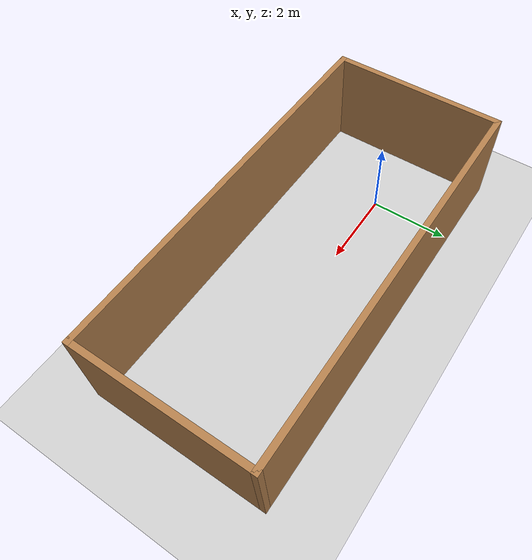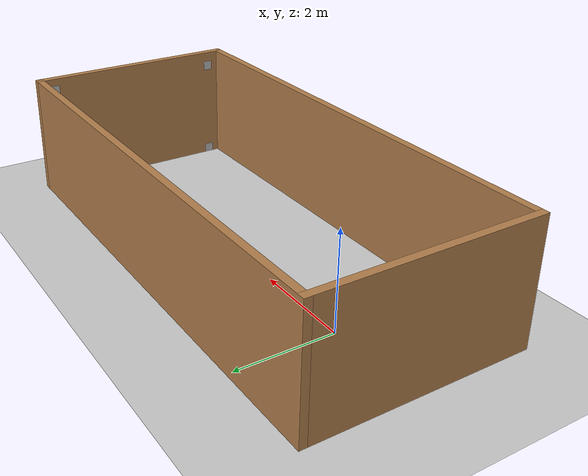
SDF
<sdf version="1.6">
 <world name="default">
  <light name="sun" type="directional">
   <pose>0 0 10 0 -0 0</pose>
   <diffuse>0.8 0.8 0.8 1</diffuse>
   <specular>0.1 0.1 0.1 1</specular>
   <attenuation>
    <range>1000</range>
    <constant>0.9</constant>
    <linear>0.01</linear>
    <quadratic>0.001</quadratic>
   </attenuation>
   <direction>-0.5 0.5 -1</direction>
  </light>
  <model name="ground_plane">
   <static>1</static>
   <link name="link">
    <collision name="collision">
     <geometry><plane><normal>0 0 1</normal><size>100 100</size></plane></geometry>
     <surface><friction><ode><mu>100</mu><mu2>50</mu2></ode></friction></surface>
    </collision>
    <visual name="visual">
     <cast_shadows>0</cast_shadows>
     <geometry><plane><normal>0 0 1</normal><size>100 100</size></plane></geometry>
     <material>
      <script><uri>file://media/materials/scripts/gazebo.material</uri><name>Gazebo/Grey</name></script>
     </material>
    </visual>
   </link>
  </model>
  <gravity>0 0 -9.8</gravity>
  <magnetic_field>6e-06 2.3e-05 -4.2e-05</magnetic_field>
  <atmosphere type="adiabatic"/>
  <physics name="default_physics" default="0" type="ode">
   <max_step_size>0.001</max_step_size>
   <real_time_factor>1</real_time_factor>
   <real_time_update_rate>1000</real_time_update_rate>
  </physics>
  <scene><ambient>0.4 0.4 0.4 1</ambient><background>0.7 0.7 0.7 1</background><shadows>1</shadows></scene>
  <spherical_coordinates>
   <surface_model>EARTH_WGS84</surface_model>
   <latitude_deg>0</latitude_deg>
   <longitude_deg>0</longitude_deg>
   <elevation>0</elevation>
   <heading_deg>0</heading_deg>
  </spherical_coordinates>
  <model name="home1">
   <pose>3.00825 -0.134533 0 0 -0 0</pose>
   <link name="Wall_35">
    <collision name="Wall_35_Collision">
     <geometry><box><size>10 0.15 2.5</size></box></geometry>
     <pose>0 0 1.25 0 -0 0</pose>
    </collision>
    <visual name="Wall_35_Visual">
     <pose>0 0 1.25 0 -0 0</pose>
     <geometry><box><size>10 0.15 2.5</size></box></geometry>
     <material>
      <script><uri>file://media/materials/scripts/gazebo.material</uri><name>Gazebo/Wood</name></script>
      <ambient>1 1 1 1</ambient>
     </material>
    </visual>
    <pose>0 -2.175 0 0 -0 0</pose>
   </link>
   <link name="Wall_36">
    <collision name="Wall_36_Collision">
     <geometry><box><size>4.5 0.15 2.5</size></box></geometry>
     <pose>0 0 1.25 0 -0 0</pose>
    </collision>
    <visual name="Wall_36_Visual">
     <pose>0 0 1.25 0 -0 0</pose>
     <geometry><box><size>4.5 0.15 2.5</size></box></geometry>
     <material>
      <script><uri>file://media/materials/scripts/gazebo.material</uri><name>Gazebo/Wood</name></script>
      <ambient>1 1 1 1</ambient>
     </material>
    </visual>
    <pose>4.925 0 0 0 -0 1.5708</pose>
   </link>
   <link name="Wall_37">
    <collision name="Wall_37_Collision">
     <geometry><box><size>10 0.15 2.5</size></box></geometry>
     <pose>0 0 1.25 0 -0 0</pose>
    </collision>
    <visual name="Wall_37_Visual">
     <pose>0 0 1.25 0 -0 0</pose>
     <geometry><box><size>10 0.15 2.5</size></box></geometry>
     <material>
      <script><uri>file://media/materials/scripts/gazebo.material</uri><name>Gazebo/Wood</name></script>
      <ambient>1 1 1 1</ambient>
     </material>
    </visual>
    <pose>0 2.175 0 0 -0 3.14159</pose>
   </link>
   <link name="Wall_38">
    <collision name="Wall_38_Collision">
     <geometry><box><size>4.5 0.15 2.5</size></box></geometry>
     <pose>0 0 1.25 0 -0 0</pose>
    </collision>
    <visual name="Wall_38_Visual">
     <pose>0 0 1.25 0 -0 0</pose>
     <geometry><box><size>4.5 0.15 2.5</size></box></geometry>
     <material>
      <script><uri>file://media/materials/scripts/gazebo.material</uri><name>Gazebo/Wood</name></script>
      <ambient>1 1 1 1</ambient>
     </material>
    </visual>
    <pose>-4.925 0 0 0 0 -1.5708</pose>
   </link>
   <static>1</static>
  </model>
  <model name="home1_tag">
   <model name="aruco0">
    <static>1</static>
    <link name="link">
     <pose>0 0 0.1 0 -0 0</pose>
     <collision name="collision"><geometry><box><size>0.2 0.001 0.2</size></box></geometry></collision>
     <visual name="visual">
      <cast_shadows>0</cast_shadows>
      <geometry><box><size>0.2 0.001 0.2</size></box></geometry>
      <material>
       <script>
        <uri>model://aruco0/materials/scripts</uri>
        <uri>model://aruco0/materials/textures</uri>
        <name>vrc/aruco0</name>
       </script>
      </material>
     </visual>
    </link>
    <pose>0.003273 1.85476 1.07713 0 -0 1.57831</pose>
   </model>
   <model name="aruco1">
    <static>1</static>
    <link name="link">
     <pose>0 0 0.1 0 -0 0</pose>
     <collision name="collision"><geometry><box><size>0.2 0.001 0.2</size></box></geometry></collision>
     <visual name="visual">
      <cast_shadows>0</cast_shadows>
      <geometry><box><size>0.2 0.001 0.2</size></box></geometry>
      <material>
       <script>
        <uri>model://aruco1/materials/scripts</uri>
        <uri>model://aruco1/materials/textures</uri>
        <name>vrc/aruco1</name>
       </script>
      </material>
     </visual>
    </link>
    <pose>-0.00826 1.92568 -1.03119 0 -0 1.56509</pose>
   </model>
   <model name="aruco100">
    <static>1</static>
    <link name="link">
     <pose>0 0 0.1 0 -0 0</pose>
     <collision name="collision"><geometry><box><size>0.2 0.001 0.2</size></box></geometry></collision>
     <visual name="visual">
      <cast_shadows>0</cast_shadows>
      <geometry><box><size>0.2 0.001 0.2</size></box></geometry>
      <material>
       <script>
        <uri>model://aruco100/materials/scripts</uri>
        <uri>model://aruco100/materials/textures</uri>
        <name>vrc/aruco100</name>
       </script>
      </material>
     </visual>
    </link>
    <pose>0.004564 -1.88786 -1.06703 0 -0 1.5768</pose>
   </model>
   <model name="aruco101">
    <static>1</static>
    <link name="link">
     <pose>0 0 0.1 0 -0 0</pose>
     <collision name="collision"><geometry><box><size>0.2 0.001 0.2</size></box></geometry></collision>
     <visual name="visual">
      <cast_shadows>0</cast_shadows>
      <geometry><box><size>0.2 0.001 0.2</size></box></geometry>
      <material>
       <script>
        <uri>model://aruco101/materials/scripts</uri>
        <uri>model://aruco101/materials/textures</uri>
        <name>vrc/aruco101</name>
       </script>
      </material>
     </visual>
    </link>
    <pose>0.000419 -1.89258 1.02109 1.6e-05 -0.010549 1.56925</pose>
   </model>
   <static>0</static>
   <pose>7.85234 -0.107482 1.06703 0 -0 0</pose>
  </model>
 </world>
</sdf>
